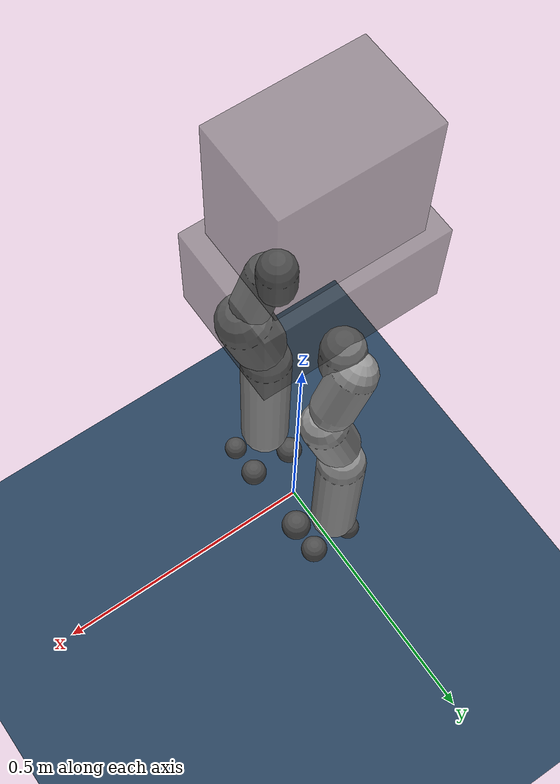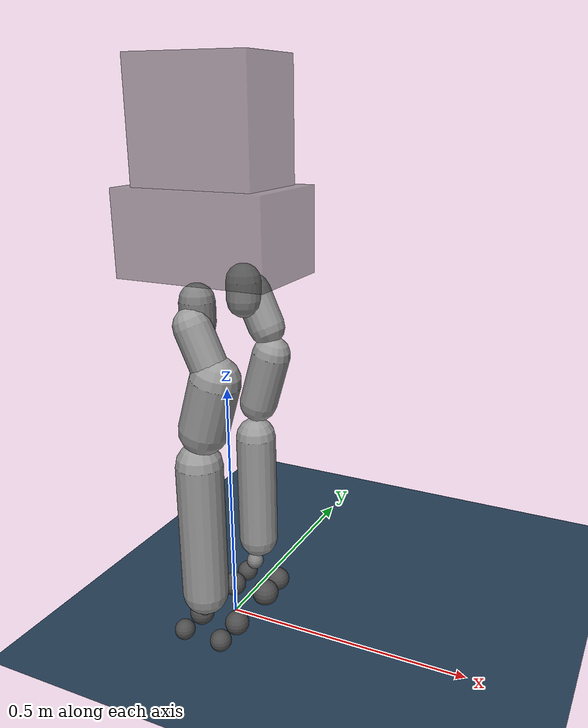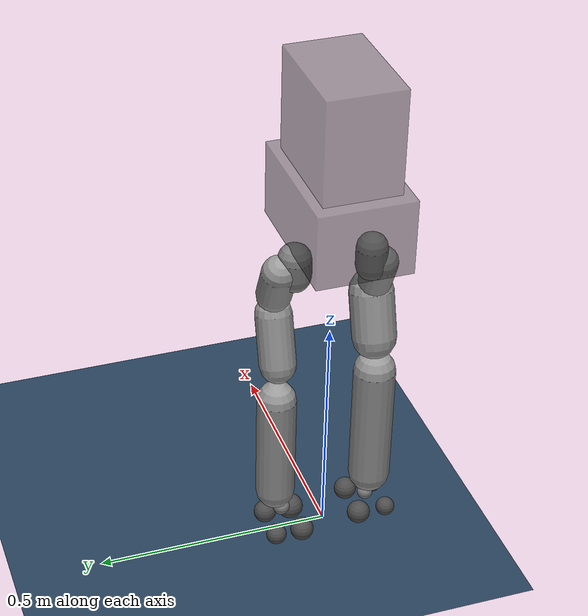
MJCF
<?xml version='1.0' encoding='UTF-8'?>
<mujoco model="g1_12dof">
  <compiler angle="degree" />
  <option timestep="0.002" integrator="RK4" />
  <default>
    <joint damping="1.45" armature="0.01" frictionloss="0.086" limited="true" />
    <geom conaffinity="1" condim="3" contype="1" friction="0.81 0.19 0.22" />
    <motor ctrllimited="true" ctrlrange="-1 1" />
  </default>
  <asset>
    <texture type="skybox" builtin="gradient" rgb1="0.3 0.5 0.7" rgb2="0.0 0.0 0.0" width="512" height="512" />
    <texture name="texplane" type="2d" builtin="checker" rgb1="0.2 0.3 0.4" rgb2="0.1 0.2 0.3" width="512" height="512" mark="cross" markrgb="1 1 1" />
    <material name="matplane" reflectance="0.3" texture="texplane" texrepeat="1 1" texuniform="true" />
  </asset>
  <worldbody>
    <light cutoff="100" diffuse="1 1 1" dir="-1 0 -1.5" directional="true" exponent="1" pos="0 0 1.3" specular="0.1 0.1 0.1" />
    <geom name="floor" pos="0 0 0" size="40 40 0.125" type="plane" material="matplane" condim="3" />
    <body name="pelvis" pos="-0.008085 -0.005018 0.802154">
      <inertial pos="0.0144905 0.000151462 0.144068" quat="0.999881 -0.000505543 -0.0154276 0.000328408" mass="16.844893" diaginertia="0.51605209 0.42396485 0.19771246" />
      <freejoint name="root" />
      <geom name="pelvis_geom" type="box" size="0.15 0.1 0.08" pos="0 0 0" rgba="0.3 0.3 0.3 0.5" />
      <geom name="torso_geom" type="box" size="0.12 0.08 0.15" pos="0 0 0.15" rgba="0.3 0.3 0.3 0.5" />
      <body name="left_hip_pitch_link" pos="0.003288 0.059154 -0.097567">
        <inertial pos="0.002741 0.047791 -0.02606" quat="0.954862 0.293964 0.0302556 0.030122" mass="1.593386" diaginertia="0.00226412 0.00191369 0.00144955" />
        <joint name="left_hip_pitch_joint" pos="0 0 0" axis="0 1 0" range="-146.7 163.9" damping="0.94" armature="0.01" frictionloss="0.083" />
        <geom name="left_hip_pitch_geom" type="capsule" fromto="0.000000 0.028274 -0.009425 0.000000 0.028274 -0.047123" size="0.034909" rgba="0.5 0.5 0.5 1" />
        <body name="left_hip_roll_link" pos="0.000971 0.058694 -0.035733" quat="0.996179 0 -0.0873386 0">
          <inertial pos="0.029812 -0.001045 -0.087934" quat="0.977808 -1.97119e-05 0.205576 -0.0403793" mass="1.661052" diaginertia="0.00287014 0.00271461 0.00167439" />
          <joint name="left_hip_roll_joint" pos="0 0 0" axis="1 0 0" range="-31.4 167.8" damping="0.99" armature="0.01" frictionloss="0.138" />
          <geom name="left_hip_roll_geom" type="capsule" fromto="0.000000 0.000000 0.000000 0.018734 0.000000 -0.074934" size="0.036868" rgba="0.6 0.6 0.6 1" />
          <body name="left_hip_yaw_link" pos="0.020141 -0.003921 -0.130896">
            <inertial pos="-0.057709 -0.010981 -0.15078" quat="0.600598 0.15832 0.223482 0.751181" mass="1.769167" diaginertia="0.00817272 0.00755578 0.00168620" />
            <joint name="left_hip_yaw_joint" pos="0 0 0" axis="0 0 1" range="-155.0 153.7" damping="1.18" armature="0.01" frictionloss="0.090" />
            <geom name="left_hip_yaw_geom" type="capsule" fromto="0.000000 0.000000 0.000000 -0.050248 0.000000 -0.100495" size="0.038911" rgba="0.6 0.6 0.6 1" />
            <body name="left_knee_link" pos="-0.075700 0.004771 -0.178167" quat="0.996179 0 0.0873386 0">
              <inertial pos="0.005457 0.003964 -0.12074" quat="0.923418 -0.0327699 0.0158246 0.382067" mass="1.666171" diaginertia="0.00934202 0.00925780 0.00120225" />
              <joint name="left_knee_joint" pos="0 0 0" axis="0 1 0" range="-8.0 160.1" damping="1.49" armature="0.01" frictionloss="0.134" />
              <geom name="left_knee_geom" type="capsule" fromto="0.000000 0.000000 0.000000 0.000000 0.000000 -0.239561" size="0.041790" rgba="0.6 0.6 0.6 1" />
              <body name="left_ankle_pitch_link" pos="-0.002346 -0.014250 -0.291689">
                <inertial pos="-0.007269 0 0.011137" quat="0.603053 0.369225 0.369225 0.603053" mass="0.063817" diaginertia="0.00001551 0.00001156 0.00000568" />
                <joint name="left_ankle_pitch_joint" pos="0 0 0" axis="0 1 0" range="-47.7 32.7" damping="1.37" armature="0.005" frictionloss="0.129" />
                <geom name="left_ankle_pitch_geom" type="sphere" size="0.018337" pos="0.000000 0.000000 0.000000" rgba="0.5 0.5 0.5 1" />
                <body name="left_ankle_roll_link" pos="-0.003427 -0.008023 -0.017905">
                  <inertial pos="0.026505 0 -0.016425" quat="-0.000481092 0.728482 -0.000618967 0.685065" mass="0.500526" diaginertia="0.00129017 0.00124690 0.00016791" />
                  <joint name="left_ankle_roll_joint" pos="0 0 0" axis="1 0 0" range="-18.8 18.6" damping="0.85" armature="0.005" frictionloss="0.105" />
                  <geom name="left_foot_1" type="sphere" size="0.024561" pos="0.048664 0.029198 -0.029198" rgba="0.3 0.3 0.3 1" />
                  <geom name="left_foot_2" type="sphere" size="0.027852" pos="0.048664 -0.029198 -0.029198" rgba="0.3 0.3 0.3 1" />
                  <geom name="left_foot_3" type="sphere" size="0.021997" pos="-0.029198 0.029198 -0.029198" rgba="0.3 0.3 0.3 1" />
                  <geom name="left_foot_4" type="sphere" size="0.025142" pos="-0.029198 -0.029198 -0.029198" rgba="0.3 0.3 0.3 1" />
                </body>
              </body>
            </body>
          </body>
        </body>
      </body>
      <body name="right_hip_pitch_link" pos="0.004041 -0.045590 -0.100954">
        <inertial pos="0.002741 -0.047791 -0.02606" quat="0.954862 -0.293964 0.0302556 -0.030122" mass="1.547735" diaginertia="0.00217805 0.00184093 0.00139445" />
        <joint name="right_hip_pitch_joint" pos="0 0 0" axis="0 1 0" range="-149.4 163.1" damping="1.24" armature="0.01" frictionloss="0.103" />
        <geom name="right_hip_pitch_geom" type="capsule" fromto="0.000000 -0.030554 -0.010185 0.000000 -0.030554 -0.050924" size="0.032743" rgba="0.5 0.5 0.5 1" />
        <body name="right_hip_roll_link" pos="0.002576 -0.053705 -0.050216" quat="0.996179 0 -0.0873386 0">
          <inertial pos="0.029812 0.001045 -0.087934" quat="0.977808 1.97119e-05 0.205576 0.0403793" mass="1.581478" diaginertia="0.00268829 0.00254262 0.00156831" />
          <joint name="right_hip_roll_joint" pos="0 0 0" axis="1 0 0" range="-168.6 33.9" damping="1.03" armature="0.01" frictionloss="0.131" />
          <geom name="right_hip_roll_geom" type="capsule" fromto="0.000000 0.000000 0.000000 0.020430 0.000000 -0.081721" size="0.034728" rgba="0.6 0.6 0.6 1" />
          <body name="right_hip_yaw_link" pos="0.025274 0.000602 -0.102158">
            <inertial pos="-0.057709 0.010981 -0.15078" quat="0.751181 0.223482 0.15832 0.600598" mass="1.843656" diaginertia="0.00863472 0.00798291 0.00178152" />
            <joint name="right_hip_yaw_joint" pos="0 0 0" axis="0 0 1" range="-155.9 160.6" damping="1.13" armature="0.01" frictionloss="0.088" />
            <geom name="right_hip_yaw_geom" type="capsule" fromto="0.000000 0.000000 0.000000 -0.045651 0.000000 -0.091301" size="0.047182" rgba="0.6 0.6 0.6 1" />
            <body name="right_knee_link" pos="-0.073388 0.001053 -0.162260" quat="0.996179 0 0.0873386 0">
              <inertial pos="0.005457 -0.003964 -0.12074" quat="0.923439 0.0345276 0.0116333 -0.382012" mass="1.561508" diaginertia="0.00856306 0.00849553 0.00110258" />
              <joint name="right_knee_joint" pos="0 0 0" axis="0 1 0" range="-5.1 165.2" damping="1.19" armature="0.01" frictionloss="0.134" />
              <geom name="right_knee_geom" type="capsule" fromto="0.000000 0.000000 0.000000 0.000000 0.000000 -0.273282" size="0.044934" rgba="0.6 0.6 0.6 1" />
              <body name="right_ankle_pitch_link" pos="-0.011687 0.011537 -0.320430">
                <inertial pos="-0.007269 0 0.011137" quat="0.603053 0.369225 0.369225 0.603053" mass="0.087909" diaginertia="0.00002378 0.00001772 0.00000871" />
                <joint name="right_ankle_pitch_joint" pos="0 0 0" axis="0 1 0" range="-53.9 25.3" damping="1.10" armature="0.005" frictionloss="0.082" />
                <geom name="right_ankle_pitch_geom" type="sphere" size="0.016781" pos="0.000000 0.000000 0.000000" rgba="0.5 0.5 0.5 1" />
                <body name="right_ankle_roll_link" pos="0.007910 -0.009094 -0.002844">
                  <inertial pos="0.026505 0 -0.016425" quat="0.000481092 0.728482 0.000618967 0.685065" mass="0.688850" diaginertia="0.00197505 0.00190881 0.00025704" />
                  <joint name="right_ankle_roll_joint" pos="0 0 0" axis="1 0 0" range="-14.9 19.1" damping="1.25" armature="0.005" frictionloss="0.102" />
                  <geom name="right_foot_1" type="sphere" size="0.024402" pos="0.051842 0.031105 -0.031105" rgba="0.3 0.3 0.3 1" />
                  <geom name="right_foot_2" type="sphere" size="0.021220" pos="0.051842 -0.031105 -0.031105" rgba="0.3 0.3 0.3 1" />
                  <geom name="right_foot_3" type="sphere" size="0.024952" pos="-0.031105 0.031105 -0.031105" rgba="0.3 0.3 0.3 1" />
                  <geom name="right_foot_4" type="sphere" size="0.020344" pos="-0.031105 -0.031105 -0.031105" rgba="0.3 0.3 0.3 1" />
                </body>
              </body>
            </body>
          </body>
        </body>
      </body>
    </body>
  </worldbody>
  <actuator>
    <motor name="left_hip_pitch_joint" joint="left_hip_pitch_joint" gear="102.4" />
    <motor name="left_hip_roll_joint" joint="left_hip_roll_joint" gear="125.6" />
    <motor name="left_hip_yaw_joint" joint="left_hip_yaw_joint" gear="93.7" />
    <motor name="left_knee_joint" joint="left_knee_joint" gear="128.5" />
    <motor name="left_ankle_pitch_joint" joint="left_ankle_pitch_joint" gear="50.4" />
    <motor name="left_ankle_roll_joint" joint="left_ankle_roll_joint" gear="50.9" />
    <motor name="right_hip_pitch_joint" joint="right_hip_pitch_joint" gear="76.9" />
    <motor name="right_hip_roll_joint" joint="right_hip_roll_joint" gear="165.1" />
    <motor name="right_hip_yaw_joint" joint="right_hip_yaw_joint" gear="97.7" />
    <motor name="right_knee_joint" joint="right_knee_joint" gear="163.4" />
    <motor name="right_ankle_pitch_joint" joint="right_ankle_pitch_joint" gear="57.9" />
    <motor name="right_ankle_roll_joint" joint="right_ankle_roll_joint" gear="52.0" />
  </actuator>
</mujoco>
